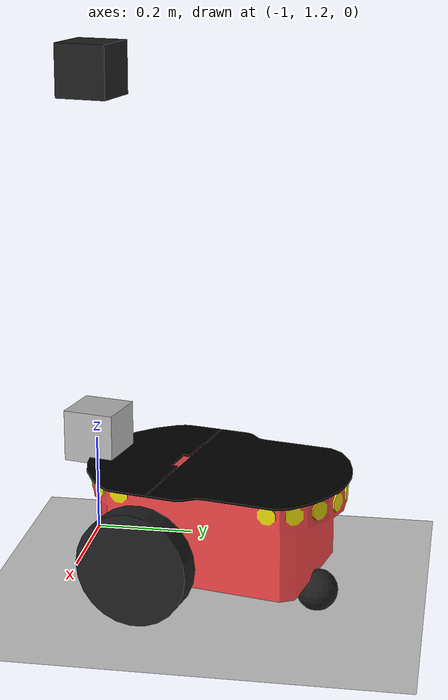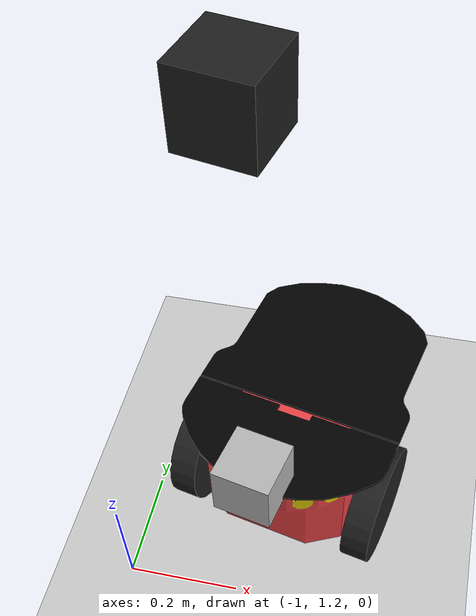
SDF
<sdf version="1.6">
 <world name="default">
  <light name="sun" type="directional">
   <pose>0 0 10 0 -0 0</pose>
   <diffuse>0.8 0.8 0.8 1</diffuse>
   <specular>0.2 0.2 0.2 1</specular>
   <attenuation>
    <range>1000</range>
    <constant>0.9</constant>
    <linear>0.01</linear>
    <quadratic>0.001</quadratic>
   </attenuation>
   <direction>-0.5 0.1 -0.9</direction>
  </light>
  <model name="ground_plane">
   <static>1</static>
   <link name="link">
    <collision name="collision">
     <geometry><plane><normal>0 0 1</normal><size>100 100</size></plane></geometry>
     <surface><friction><ode><mu>100</mu><mu2>50</mu2></ode></friction></surface>
    </collision>
    <visual name="visual">
     <cast_shadows>0</cast_shadows>
     <geometry><plane><normal>0 0 1</normal><size>100 100</size></plane></geometry>
     <material>
      <script><uri>file://media/materials/scripts/gazebo.material</uri><name>Gazebo/Grey</name></script>
     </material>
    </visual>
    <velocity_decay><linear>0</linear><angular>0</angular></velocity_decay>
   </link>
  </model>
  <physics name="default_physics" default="0" type="ode">
   <max_step_size>0.001</max_step_size>
   <real_time_factor>1</real_time_factor>
   <real_time_update_rate>1000</real_time_update_rate>
  </physics>
  <scene><ambient>0.4 0.4 0.4 1</ambient><background>0.7 0.7 0.7 1</background><shadows>1</shadows></scene>
  <spherical_coordinates>
   <surface_model>EARTH_WGS84</surface_model>
   <latitude_deg>0</latitude_deg>
   <longitude_deg>0</longitude_deg>
   <elevation>0</elevation>
   <heading_deg>0</heading_deg>
  </spherical_coordinates>
  <model name="pioneer2dx">
   <link name="chassis">
    <pose>0 0 0.16 0 -0 0</pose>
    <inertial>
     <mass>5.67</mass>
     <inertia><ixx>0.07</ixx><iyy>0.08</iyy><izz>0.1</izz><ixy>0</ixy><ixz>0</ixz><iyz>0</iyz></inertia>
    </inertial>
    <collision name="collision"><geometry><box><size>0.445 0.277 0.17</size></box></geometry></collision>
    <collision name="castor_collision">
     <pose>-0.2 0 -0.12 0 -0 0</pose>
     <geometry><sphere><radius>0.04</radius></sphere></geometry>
     <surface><friction><ode><mu>0</mu><mu2>0</mu2><slip1>1</slip1><slip2>1</slip2></ode></friction></surface>
    </collision>
    <visual name="visual">
     <pose>0 0 0.04 0 -0 0</pose>
     <geometry><mesh><uri>model://pioneer2dx/meshes/chassis.dae</uri></mesh></geometry>
    </visual>
    <visual name="castor_visual">
     <pose>-0.2 0 -0.12 0 -0 0</pose>
     <geometry><sphere><radius>0.04</radius></sphere></geometry>
     <material>
      <script><uri>file://media/materials/scripts/gazebo.material</uri><name>Gazebo/FlatBlack</name></script>
     </material>
    </visual>
    <velocity_decay><linear>0</linear><angular>0</angular></velocity_decay>
   </link>
   <link name="right_wheel">
    <pose>0.1 -0.17 0.11 -0 1.5707 1.5707</pose>
    <inertial>
     <mass>1.5</mass>
     <inertia><ixx>0.0051</ixx><iyy>0.0051</iyy><izz>0.009</izz><ixy>0</ixy><ixz>0</ixz><iyz>0</iyz></inertia>
    </inertial>
    <collision name="collision">
     <geometry><cylinder><radius>0.11</radius><length>0.05</length></cylinder></geometry>
     <surface>
      <friction><ode><mu>100000</mu><mu2>100000</mu2><slip1>0</slip1><slip2>0</slip2></ode></friction>
     </surface>
    </collision>
    <visual name="visual">
     <geometry><cylinder><radius>0.11</radius><length>0.05</length></cylinder></geometry>
     <material>
      <script><uri>file://media/materials/scripts/gazebo.material</uri><name>Gazebo/FlatBlack</name></script>
     </material>
    </visual>
    <velocity_decay><linear>0</linear><angular>0</angular></velocity_decay>
   </link>
   <link name="left_wheel">
    <pose>0.1 0.17 0.11 -0 1.5707 1.5707</pose>
    <inertial>
     <mass>1.5</mass>
     <inertia><ixx>0.0051</ixx><iyy>0.0051</iyy><izz>0.009</izz><ixy>0</ixy><ixz>0</ixz><iyz>0</iyz></inertia>
    </inertial>
    <collision name="collision">
     <geometry><cylinder><radius>0.11</radius><length>0.05</length></cylinder></geometry>
     <surface>
      <friction><ode><mu>100000</mu><mu2>100000</mu2><slip1>0</slip1><slip2>0</slip2></ode></friction>
     </surface>
    </collision>
    <visual name="visual">
     <geometry><cylinder><radius>0.11</radius><length>0.05</length></cylinder></geometry>
     <material>
      <script><uri>file://media/materials/scripts/gazebo.material</uri><name>Gazebo/FlatBlack</name></script>
     </material>
    </visual>
    <velocity_decay><linear>0</linear><angular>0</angular></velocity_decay>
   </link>
   <joint name="left_wheel_hinge" type="revolute">
    <pose>0 0 -0.03 0 -0 0</pose>
    <child>left_wheel</child>
    <parent>chassis</parent>
    <axis>
     <xyz>0 1 0</xyz>
     <limit><lower>-1e+16</lower><upper>1e+16</upper></limit>
     <use_parent_model_frame>1</use_parent_model_frame>
     <dynamics><spring_reference>0</spring_reference><spring_stiffness>0</spring_stiffness></dynamics>
    </axis>
   </joint>
   <joint name="right_wheel_hinge" type="revolute">
    <pose>0 0 0.03 0 -0 0</pose>
    <child>right_wheel</child>
    <parent>chassis</parent>
    <axis>
     <xyz>0 1 0</xyz>
     <limit><lower>-1e+16</lower><upper>1e+16</upper></limit>
     <use_parent_model_frame>1</use_parent_model_frame>
     <dynamics><spring_reference>0</spring_reference><spring_stiffness>0</spring_stiffness></dynamics>
    </axis>
   </joint>
   <plugin name="differential_drive_controller" filename="libgazebo_ros_diff_drive.so">
    <alwaysOn>1</alwaysOn>
    <updateRate>100</updateRate>
    <leftJoint>left_wheel_hinge</leftJoint>
    <rightJoint>right_wheel_hinge</rightJoint>
    <wheelSeparation>0.39</wheelSeparation>
    <wheelDiameter>0.15</wheelDiameter>
    <torque>5</torque>
    <commandTopic>cmd_vel</commandTopic>
    <odometryTopic>odom</odometryTopic>
    <odometryFrame>odom</odometryFrame>
    <robotBaseFrame>chassis</robotBaseFrame>
   </plugin>
   <pose>-0.719659 1.50491 0 -7e-06 -2.7e-05 -1.77919</pose>
   <static>0</static>
   <link name="camera::link">
    <inertial>
     <mass>0.1</mass>
     <inertia>
      <ixx>0.000166667</ixx>
      <iyy>0.000166667</iyy>
      <izz>0.000166667</izz>
      <ixy>0</ixy>
      <ixz>0</ixz>
      <iyz>0</iyz>
     </inertia>
    </inertial>
    <collision name="collision"><geometry><box><size>0.1 0.1 0.1</size></box></geometry></collision>
    <visual name="visual"><geometry><box><size>0.1 0.1 0.1</size></box></geometry></visual>
    <sensor name="camera" type="camera">
     <camera name="__default__">
      <horizontal_fov>1.047</horizontal_fov>
      <image><width>640</width><height>480</height></image>
      <clip><near>0.1</near><far>100</far></clip>
     </camera>
     <plugin name="camera_controller" filename="libgazebo_ros_camera.so">
      <alwaysOn>1</alwaysOn>
      <updateRate>30.0</updateRate>
      <cameraName>pioneer2dx/camera</cameraName>
      <imageTopicName>image_raw</imageTopicName>
      <cameraInfoTopicName>camera_info</cameraInfoTopicName>
      <frameName>camera_link</frameName>
      <hackBaseline>0.07</hackBaseline>
      <distortionK1>0.0</distortionK1>
      <distortionK2>0.0</distortionK2>
      <distortionK3>0.0</distortionK3>
      <distortionT1>0.0</distortionT1>
      <distortionT2>0.0</distortionT2>
     </plugin>
     <always_on>1</always_on>
     <update_rate>30</update_rate>
     <visualize>1</visualize>
    </sensor>
    <pose>0.25 0 0.3 0 -0 0</pose>
   </link>
   <joint name="camera_joint" type="fixed"><child>camera::link</child><parent>chassis</parent></joint>
   <pose>0.795532 1.28117 0 0 -0 0</pose>
   <link name="imu_link">
    <inertial>
     <mass>0.001</mass>
     <inertia><ixx>0.0001</ixx><iyy>0.000001</iyy><izz>0.0001</izz><ixy>0</ixy><ixz>0</ixz><iyz>0</iyz></inertia>
    </inertial>
    <visual name="visual">
     <geometry><box><size>0.1 0.1 0.1</size></box></geometry>
     <material>
      <script><uri>file://media/materials/scripts/gazebo.material</uri><name>Gazebo/FlatBlack</name></script>
     </material>
    </visual>
    <collision name="collision"><geometry><box><size>0.1 0.1 0.1</size></box></geometry></collision>
    <sensor name="imu_sensor" type="imu">
     <always_on>true</always_on>
     <update_rate>100</update_rate>
     <visualize>true</visualize>
     <topic>__default_topic__</topic>
     <plugin filename="libgazebo_ros_imu_sensor.so" name="imu_plugin">
      <topicName>imu</topicName>
      <bodyName>imu_link</bodyName>
      <updateRateHZ>10.0</updateRateHZ>
      <gaussianNoise>0.0</gaussianNoise>
      <xyzOffset>0 0 0</xyzOffset>
      <rpyOffset>0 0 0</rpyOffset>
      <frameName>imu_link</frameName>
     </plugin>
    </sensor>
    <pose>0.25 0 1.0 0 -0 0</pose>
   </link>
   <joint name="imu_joint" type="fixed"><parent>chassis</parent><child>imu_link</child></joint>
  </model>
  <gravity>0 0 -9.8</gravity>
  <magnetic_field>6e-06 2.3e-05 -4.2e-05</magnetic_field>
  <atmosphere type="adiabatic"/>
  <audio><device>default</device></audio>
 </world>
</sdf>
